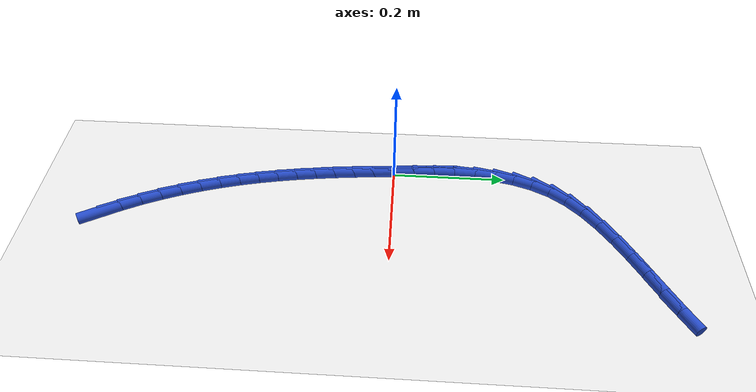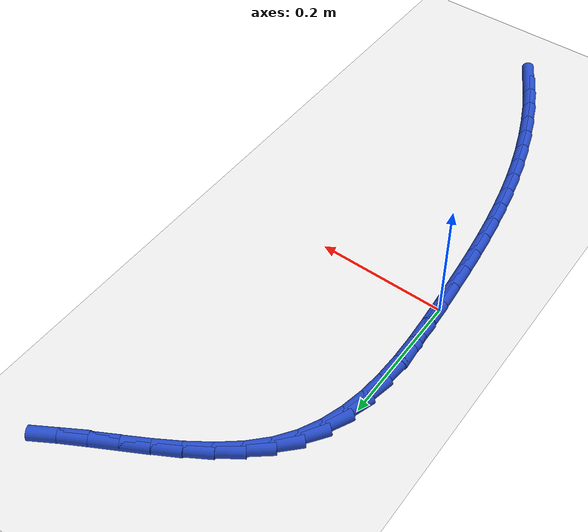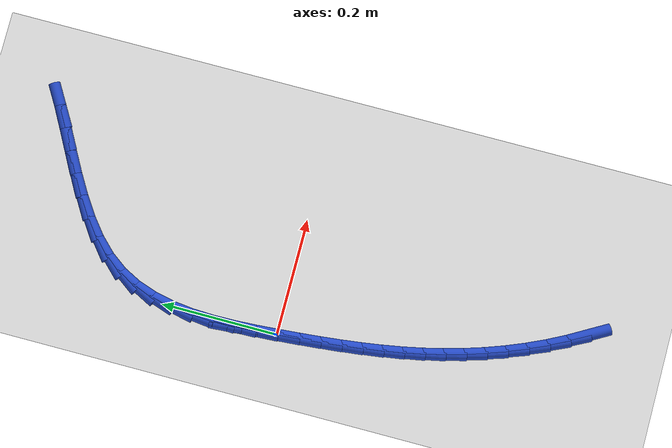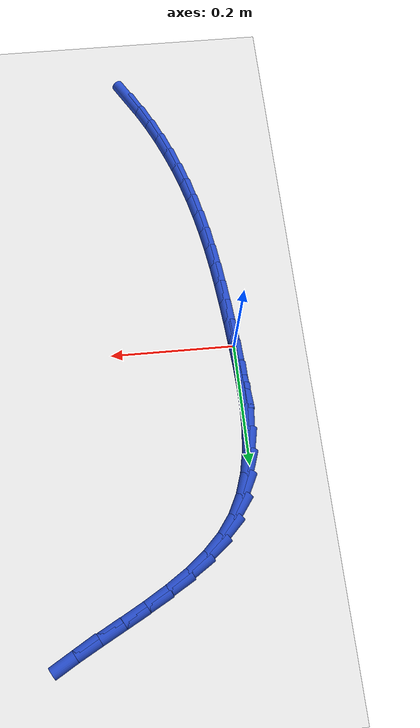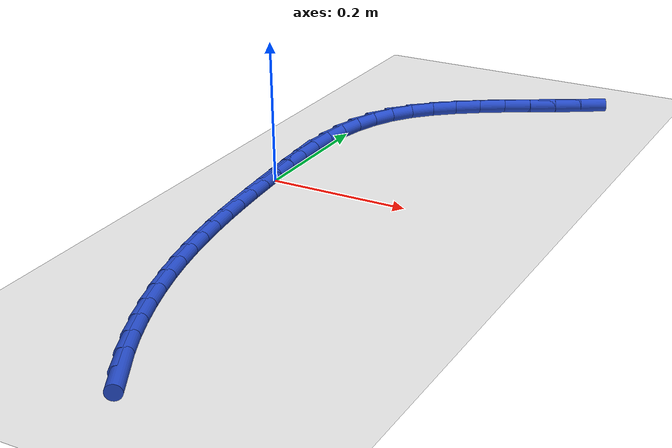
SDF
<sdf version="1.6">
 <world name="default">
  <model name="ground_plane">
   <static>1</static>
   <link name="link">
    <collision name="collision">
     <geometry><plane><normal>0 0 1</normal><size>100 100</size></plane></geometry>
     <surface><friction><ode><mu>100</mu><mu2>50</mu2></ode></friction></surface>
    </collision>
    <visual name="visual">
     <cast_shadows>0</cast_shadows>
     <geometry><plane><normal>0 0 1</normal><size>100 100</size></plane></geometry>
     <material>
      <script><uri>file://media/materials/scripts/gazebo.material</uri><name>Gazebo/WhiteGlow</name></script>
     </material>
    </visual>
   </link>
  </model>
  <model name="line">
   <link name="link_0">
    <pose>-1.214306433183765e-17 3.469446951953614e-17 0.01 0 1.57 -1.4988204890219934</pose>
    <collision name="collision">
     <geometry><cylinder><radius>0.01</radius><length>0.08</length></cylinder></geometry>
    </collision>
    <visual name="visual">
     <material>
      <script><name>Gazebo/Blue</name><uri>file://media/materials/scripts/gazebo.material</uri></script>
     </material>
     <geometry><cylinder><radius>0.01</radius><length>0.08</length></cylinder></geometry>
    </visual>
   </link>
   <link name="link_1">
    <pose>-0.0026443736135458623 0.03667627506879169 0.01 0 1.57 -1.5200555862646792</pose>
    <collision name="collision">
     <geometry><cylinder><radius>0.01</radius><length>0.08</length></cylinder></geometry>
    </collision>
    <visual name="visual">
     <material>
      <script><name>Gazebo/Blue</name><uri>file://media/materials/scripts/gazebo.material</uri></script>
     </material>
     <geometry><cylinder><radius>0.01</radius><length>0.08</length></cylinder></geometry>
    </visual>
   </link>
   <link name="link_2">
    <pose>-0.004520874620253348 0.07362666805158882 0.01 0 1.57 -1.5569291936119904</pose>
    <collision name="collision">
     <geometry><cylinder><radius>0.01</radius><length>0.08</length></cylinder></geometry>
    </collision>
    <visual name="visual">
     <material>
      <script><name>Gazebo/Blue</name><uri>file://media/materials/scripts/gazebo.material</uri></script>
     </material>
     <geometry><cylinder><radius>0.01</radius><length>0.08</length></cylinder></geometry>
    </visual>
   </link>
   <link name="link_3">
    <pose>-0.0050316268119205325 0.11045615874308516 0.01 0 1.57 1.5308085638260238</pose>
    <collision name="collision">
     <geometry><cylinder><radius>0.01</radius><length>0.08</length></cylinder></geometry>
    </collision>
    <visual name="visual">
     <material>
      <script><name>Gazebo/Blue</name><uri>file://media/materials/scripts/gazebo.material</uri></script>
     </material>
     <geometry><cylinder><radius>0.01</radius><length>0.08</length></cylinder></geometry>
    </visual>
   </link>
   <link name="link_4">
    <pose>-0.003578753980345477 0.1467697269379744 0.01 0 1.57 1.4578866126188785</pose>
    <collision name="collision">
     <geometry><cylinder><radius>0.01</radius><length>0.08</length></cylinder></geometry>
    </collision>
    <visual name="visual">
     <material>
      <script><name>Gazebo/Blue</name><uri>file://media/materials/scripts/gazebo.material</uri></script>
     </material>
     <geometry><cylinder><radius>0.01</radius><length>0.08</length></cylinder></geometry>
    </visual>
   </link>
   <link name="link_5">
    <pose>0.00043562008267375267 0.18217235243095029 0.01 0 1.57 1.3634262907586991</pose>
    <collision name="collision">
     <geometry><cylinder><radius>0.01</radius><length>0.08</length></cylinder></geometry>
    </collision>
    <visual name="visual">
     <material>
      <script><name>Gazebo/Blue</name><uri>file://media/materials/scripts/gazebo.material</uri></script>
     </material>
     <geometry><cylinder><radius>0.01</radius><length>0.08</length></cylinder></geometry>
    </visual>
   </link>
   <link name="link_6">
    <pose>0.007609371585339093 0.21626901501670653 0.01 0 1.57 1.2453707688888733</pose>
    <collision name="collision">
     <geometry><cylinder><radius>0.01</radius><length>0.08</length></cylinder></geometry>
    </collision>
    <visual name="visual">
     <material>
      <script><name>Gazebo/Blue</name><uri>file://media/materials/scripts/gazebo.material</uri></script>
     </material>
     <geometry><cylinder><radius>0.01</radius><length>0.08</length></cylinder></geometry>
    </visual>
   </link>
   <link name="link_7">
    <pose>0.018540376735852494 0.2486646944899369 0.01 0 1.57 1.1035565594660215</pose>
    <collision name="collision">
     <geometry><cylinder><radius>0.01</radius><length>0.08</length></cylinder></geometry>
    </collision>
    <visual name="visual">
     <material>
      <script><name>Gazebo/Blue</name><uri>file://media/materials/scripts/gazebo.material</uri></script>
     </material>
     <geometry><cylinder><radius>0.01</radius><length>0.08</length></cylinder></geometry>
    </visual>
   </link>
   <link name="link_8">
    <pose>0.033826511742415855 0.27896437064533514 0.01 0 1.57 0.9423853496840386</pose>
    <collision name="collision">
     <geometry><cylinder><radius>0.01</radius><length>0.08</length></cylinder></geometry>
    </collision>
    <visual name="visual">
     <material>
      <script><name>Gazebo/Blue</name><uri>file://media/materials/scripts/gazebo.material</uri></script>
     </material>
     <geometry><cylinder><radius>0.01</radius><length>0.08</length></cylinder></geometry>
    </visual>
   </link>
   <link name="link_9">
    <pose>0.0540432695106379 0.3067849416293125 0.01 0 1.57 0.7909087358598685</pose>
    <collision name="collision">
     <geometry><cylinder><radius>0.01</radius><length>0.08</length></cylinder></geometry>
    </collision>
    <visual name="visual">
     <material>
      <script><name>Gazebo/Blue</name><uri>file://media/materials/scripts/gazebo.material</uri></script>
     </material>
     <geometry><cylinder><radius>0.01</radius><length>0.08</length></cylinder></geometry>
    </visual>
   </link>
   <link name="link_10">
    <pose>0.07908616511224484 0.3321053707907126 0.01 0 1.57 0.675497220498085</pose>
    <collision name="collision">
     <geometry><cylinder><radius>0.01</radius><length>0.08</length></cylinder></geometry>
    </collision>
    <visual name="visual">
     <material>
      <script><name>Gazebo/Blue</name><uri>file://media/materials/scripts/gazebo.material</uri></script>
     </material>
     <geometry><cylinder><radius>0.01</radius><length>0.08</length></cylinder></geometry>
    </visual>
   </link>
   <link name="link_11">
    <pose>0.10806393874775722 0.35532355249173947 0.01 0 1.57 0.5927258947456043</pose>
    <collision name="collision">
     <geometry><cylinder><radius>0.01</radius><length>0.08</length></cylinder></geometry>
    </collision>
    <visual name="visual">
     <material>
      <script><name>Gazebo/Blue</name><uri>file://media/materials/scripts/gazebo.material</uri></script>
     </material>
     <geometry><cylinder><radius>0.01</radius><length>0.08</length></cylinder></geometry>
    </visual>
   </link>
   <link name="link_12">
    <pose>0.1400414453115448 0.37686074853609786 0.01 0 1.57 0.5372213075551189</pose>
    <collision name="collision">
     <geometry><cylinder><radius>0.01</radius><length>0.08</length></cylinder></geometry>
    </collision>
    <visual name="visual">
     <material>
      <script><name>Gazebo/Blue</name><uri>file://media/materials/scripts/gazebo.material</uri></script>
     </material>
     <geometry><cylinder><radius>0.01</radius><length>0.08</length></cylinder></geometry>
    </visual>
   </link>
   <link name="link_13">
    <pose>0.17408353969797752 0.397138220727493 0.01 0 1.57 0.5049072847108641</pose>
    <collision name="collision">
     <geometry><cylinder><radius>0.01</radius><length>0.08</length></cylinder></geometry>
    </collision>
    <visual name="visual">
     <material>
      <script><name>Gazebo/Blue</name><uri>file://media/materials/scripts/gazebo.material</uri></script>
     </material>
     <geometry><cylinder><radius>0.01</radius><length>0.08</length></cylinder></geometry>
    </visual>
   </link>
   <link name="link_14">
    <pose>0.20925507680142524 0.41657723086963006 0.01 0 1.57 0.49347365034514207</pose>
    <collision name="collision">
     <geometry><cylinder><radius>0.01</radius><length>0.08</length></cylinder></geometry>
    </collision>
    <visual name="visual">
     <material>
      <script><name>Gazebo/Blue</name><uri>file://media/materials/scripts/gazebo.material</uri></script>
     </material>
     <geometry><cylinder><radius>0.01</radius><length>0.08</length></cylinder></geometry>
    </visual>
   </link>
   <link name="link_15">
    <pose>0.24462091151625764 0.43559904076621403 0.01 0 1.57 0.5024468519526988</pose>
    <collision name="collision">
     <geometry><cylinder><radius>0.01</radius><length>0.08</length></cylinder></geometry>
    </collision>
    <visual name="visual">
     <material>
      <script><name>Gazebo/Blue</name><uri>file://media/materials/scripts/gazebo.material</uri></script>
     </material>
     <geometry><cylinder><radius>0.01</radius><length>0.08</length></cylinder></geometry>
    </visual>
   </link>
   <link name="link_16">
    <pose>0.2792458987368447 0.45462491222095003 0.01 0 1.57 0.5332881999788075</pose>
    <collision name="collision">
     <geometry><cylinder><radius>0.01</radius><length>0.08</length></cylinder></geometry>
    </collision>
    <visual name="visual">
     <material>
      <script><name>Gazebo/Blue</name><uri>file://media/materials/scripts/gazebo.material</uri></script>
     </material>
     <geometry><cylinder><radius>0.01</radius><length>0.08</length></cylinder></geometry>
    </visual>
   </link>
   <link name="link_195">
    <pose>0.13207263029785724 -0.5024632250646714 0.01 0 1.57 -1.0512082030063028</pose>
    <collision name="collision">
     <geometry><cylinder><radius>0.01</radius><length>0.08</length></cylinder></geometry>
    </collision>
    <visual name="visual">
     <material>
      <script><name>Gazebo/Blue</name><uri>file://media/materials/scripts/gazebo.material</uri></script>
     </material>
     <geometry><cylinder><radius>0.01</radius><length>0.08</length></cylinder></geometry>
    </visual>
   </link>
   <link name="link_196">
    <pose>0.11463114418866036 -0.47197191921314213 0.01 0 1.57 -1.0990930229154878</pose>
    <collision name="collision">
     <geometry><cylinder><radius>0.01</radius><length>0.08</length></cylinder></geometry>
    </collision>
    <visual name="visual">
     <material>
      <script><name>Gazebo/Blue</name><uri>file://media/materials/scripts/gazebo.material</uri></script>
     </material>
     <geometry><cylinder><radius>0.01</radius><length>0.08</length></cylinder></geometry>
    </visual>
   </link>
   <link name="link_197">
    <pose>0.09863551865097844 -0.4406147453818251 0.01 0 1.57 -1.144273439450604</pose>
    <collision name="collision">
     <geometry><cylinder><radius>0.01</radius><length>0.08</length></cylinder></geometry>
    </collision>
    <visual name="visual">
     <material>
      <script><name>Gazebo/Blue</name><uri>file://media/materials/scripts/gazebo.material</uri></script>
     </material>
     <geometry><cylinder><radius>0.01</radius><length>0.08</length></cylinder></geometry>
    </visual>
   </link>
   <link name="link_198">
    <pose>0.08406217981448562 -0.4085444950720057 0.01 0 1.57 -1.1870601285888456</pose>
    <collision name="collision">
     <geometry><cylinder><radius>0.01</radius><length>0.08</length></cylinder></geometry>
    </collision>
    <visual name="visual">
     <material>
      <script><name>Gazebo/Blue</name><uri>file://media/materials/scripts/gazebo.material</uri></script>
     </material>
     <geometry><cylinder><radius>0.01</radius><length>0.08</length></cylinder></geometry>
    </visual>
   </link>
   <link name="link_199">
    <pose>0.0708875538088565 -0.37591395978497016 0.01 0 1.57 -1.2277672575852945</pose>
    <collision name="collision">
     <geometry><cylinder><radius>0.01</radius><length>0.08</length></cylinder></geometry>
    </collision>
    <visual name="visual">
     <material>
      <script><name>Gazebo/Blue</name><uri>file://media/materials/scripts/gazebo.material</uri></script>
     </material>
     <geometry><cylinder><radius>0.01</radius><length>0.08</length></cylinder></geometry>
    </visual>
   </link>
   <link name="link_200">
    <pose>0.05908806676376564 -0.34287593102200437 0.01 0 1.57 -1.2667094251798863</pose>
    <collision name="collision">
     <geometry><cylinder><radius>0.01</radius><length>0.08</length></cylinder></geometry>
    </collision>
    <visual name="visual">
     <material>
      <script><name>Gazebo/Blue</name><uri>file://media/materials/scripts/gazebo.material</uri></script>
     </material>
     <geometry><cylinder><radius>0.01</radius><length>0.08</length></cylinder></geometry>
    </visual>
   </link>
   <link name="link_201">
    <pose>0.048640144808887675 -0.30958320028439473 0.01 0 1.57 -1.3041627285091948</pose>
    <collision name="collision">
     <geometry><cylinder><radius>0.01</radius><length>0.08</length></cylinder></geometry>
    </collision>
    <visual name="visual">
     <material>
      <script><name>Gazebo/Blue</name><uri>file://media/materials/scripts/gazebo.material</uri></script>
     </material>
     <geometry><cylinder><radius>0.01</radius><length>0.08</length></cylinder></geometry>
    </visual>
   </link>
   <link name="link_202">
    <pose>0.03951704946686995 -0.2761820602541904 0.01 0 1.57 -1.33958821275369</pose>
    <collision name="collision">
     <geometry><cylinder><radius>0.01</radius><length>0.08</length></cylinder></geometry>
    </collision>
    <visual name="visual">
     <material>
      <script><name>Gazebo/Blue</name><uri>file://media/materials/scripts/gazebo.material</uri></script>
     </material>
     <geometry><cylinder><radius>0.01</radius><length>0.08</length></cylinder></geometry>
    </visual>
   </link>
   <link name="link_203">
    <pose>0.03163530725029763 -0.24270229291508463 0.01 0 1.57 -1.3720562994157497</pose>
    <collision name="collision">
     <geometry><cylinder><radius>0.01</radius><length>0.08</length></cylinder></geometry>
    </collision>
    <visual name="visual">
     <material>
      <script><name>Gazebo/Blue</name><uri>file://media/materials/scripts/gazebo.material</uri></script>
     </material>
     <geometry><cylinder><radius>0.01</radius><length>0.08</length></cylinder></geometry>
    </visual>
   </link>
   <link name="link_204">
    <pose>0.02486241088755616 -0.2090729847466363 0.01 0 1.57 -1.4011676436862412</pose>
    <collision name="collision">
     <geometry><cylinder><radius>0.01</radius><length>0.08</length></cylinder></geometry>
    </collision>
    <visual name="visual">
     <material>
      <script><name>Gazebo/Blue</name><uri>file://media/materials/scripts/gazebo.material</uri></script>
     </material>
     <geometry><cylinder><radius>0.01</radius><length>0.08</length></cylinder></geometry>
    </visual>
   </link>
   <link name="link_205">
    <pose>0.019064239027903492 -0.17521990756456413 0.01 0 1.57 -1.4266375037423764</pose>
    <collision name="collision">
     <geometry><cylinder><radius>0.01</radius><length>0.08</length></cylinder></geometry>
    </collision>
    <visual name="visual">
     <material>
      <script><name>Gazebo/Blue</name><uri>file://media/materials/scripts/gazebo.material</uri></script>
     </material>
     <geometry><cylinder><radius>0.01</radius><length>0.08</length></cylinder></geometry>
    </visual>
   </link>
   <link name="link_206">
    <pose>0.014106670320597562 -0.14106883318458685 0.01 0 1.57 -1.4482763363630418</pose>
    <collision name="collision">
     <geometry><cylinder><radius>0.01</radius><length>0.08</length></cylinder></geometry>
    </collision>
    <visual name="visual">
     <material>
      <script><name>Gazebo/Blue</name><uri>file://media/materials/scripts/gazebo.material</uri></script>
     </material>
     <geometry><cylinder><radius>0.01</radius><length>0.08</length></cylinder></geometry>
    </visual>
   </link>
   <link name="link_207">
    <pose>0.009855583414896313 -0.10654553342242314 0.01 0 1.57 -1.4659844448322208</pose>
    <collision name="collision">
     <geometry><cylinder><radius>0.01</radius><length>0.08</length></cylinder></geometry>
    </collision>
    <visual name="visual">
     <material>
      <script><name>Gazebo/Blue</name><uri>file://media/materials/scripts/gazebo.material</uri></script>
     </material>
     <geometry><cylinder><radius>0.01</radius><length>0.08</length></cylinder></geometry>
    </visual>
   </link>
   <link name="link_208">
    <pose>0.006176856960057674 -0.07157578009379163 0.01 0 1.57 -1.4797428625316886</pose>
    <collision name="collision">
     <geometry><cylinder><radius>0.01</radius><length>0.08</length></cylinder></geometry>
    </collision>
    <visual name="visual">
     <material>
      <script><name>Gazebo/Blue</name><uri>file://media/materials/scripts/gazebo.material</uri></script>
     </material>
     <geometry><cylinder><radius>0.01</radius><length>0.08</length></cylinder></geometry>
    </visual>
   </link>
   <link name="link_209">
    <pose>0.002936369605339516 -0.036085345014410186 0.01 0 1.57 -1.4896023095242334</pose>
    <collision name="collision">
     <geometry><cylinder><radius>0.01</radius><length>0.08</length></cylinder></geometry>
    </collision>
    <visual name="visual">
     <material>
      <script><name>Gazebo/Blue</name><uri>file://media/materials/scripts/gazebo.material</uri></script>
     </material>
     <geometry><cylinder><radius>0.01</radius><length>0.08</length></cylinder></geometry>
    </visual>
   </link>
   <link name="link_210">
    <pose>-1.214306433183765e-17 2.7755575615628914e-17 0.01 0 1.57 -1.4956716941228463</pose>
    <collision name="collision">
     <geometry><cylinder><radius>0.01</radius><length>0.08</length></cylinder></geometry>
    </collision>
    <visual name="visual">
     <material>
      <script><name>Gazebo/Blue</name><uri>file://media/materials/scripts/gazebo.material</uri></script>
     </material>
     <geometry><cylinder><radius>0.01</radius><length>0.08</length></cylinder></geometry>
    </visual>
   </link>
   <link name="link_211">
    <pose>-0.002766373206703183 0.03675448313372279 0.01 0 1.57 -1.4981071606968055</pose>
    <collision name="collision">
     <geometry><cylinder><radius>0.01</radius><length>0.08</length></cylinder></geometry>
    </collision>
    <visual name="visual">
     <material>
      <script><name>Gazebo/Blue</name><uri>file://media/materials/scripts/gazebo.material</uri></script>
     </material>
     <geometry><cylinder><radius>0.01</radius><length>0.08</length></cylinder></geometry>
    </visual>
   </link>
   <link name="link_212">
    <pose>-0.005496871365512123 0.07425233257104043 0.01 0 1.57 -1.4969015087896722</pose>
    <collision name="collision">
     <geometry><cylinder><radius>0.01</radius><length>0.08</length></cylinder></geometry>
    </collision>
    <visual name="visual">
     <material>
      <script><name>Gazebo/Blue</name><uri>file://media/materials/scripts/gazebo.material</uri></script>
     </material>
     <geometry><cylinder><radius>0.01</radius><length>0.08</length></cylinder></geometry>
    </visual>
   </link>
  </model>
 </world>
</sdf>
